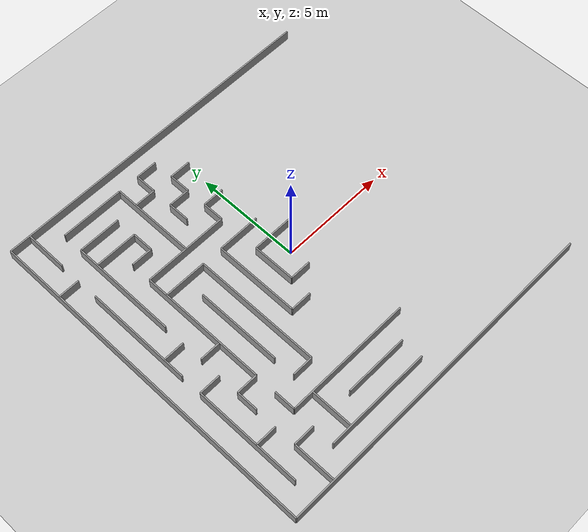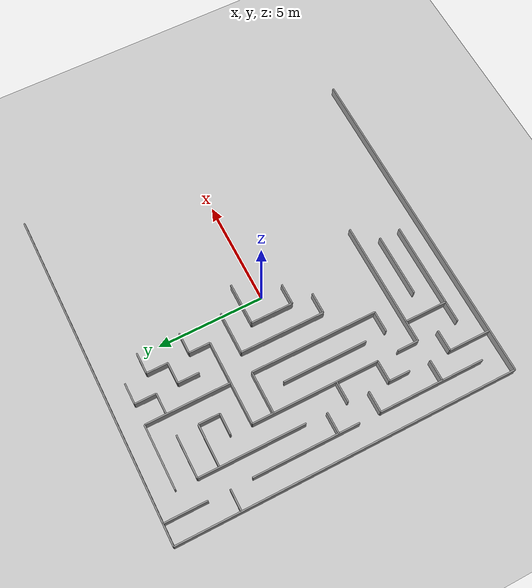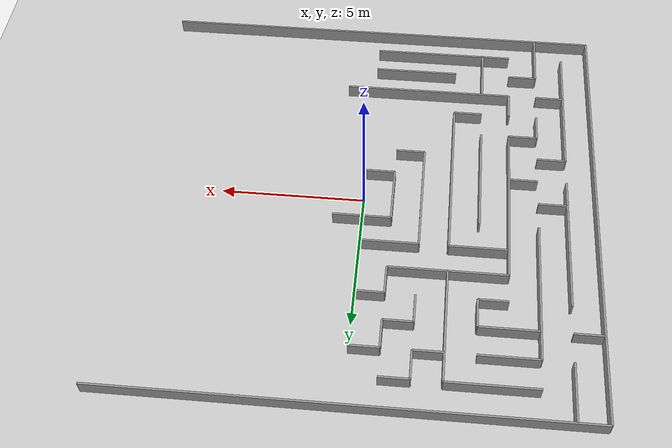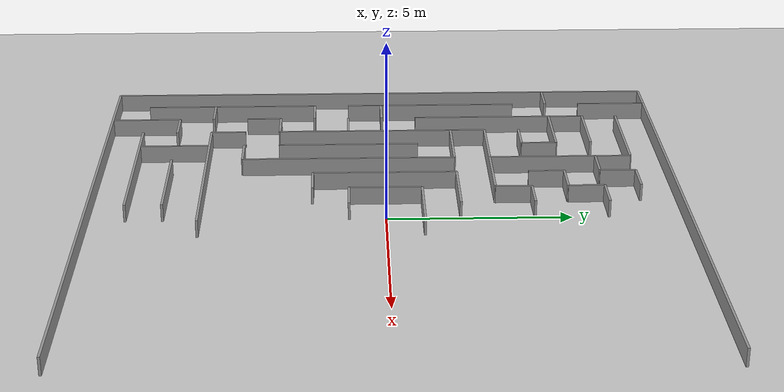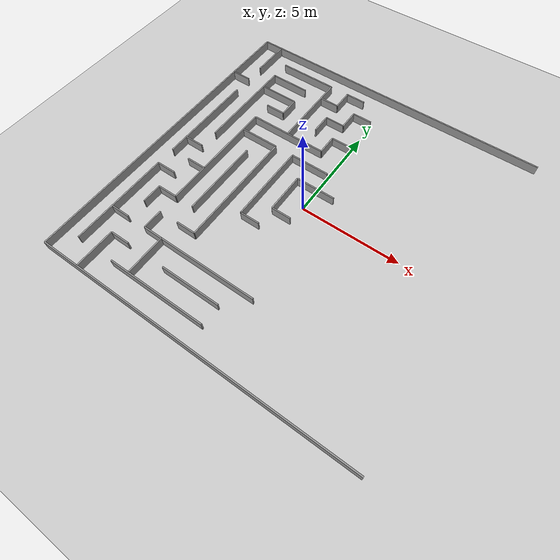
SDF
<sdf version="1.7">
 <world name="maze_world">
  <include><uri>model://sun</uri></include>
  <include><uri>model://ground_plane</uri></include>
  <model name="optimized_wall_0">
   <static>1</static>
   <pose>0.0 -8.0 0.25 0 0 0.0</pose>
   <link name="link">
    <collision name="collision"><geometry><box><size>16.0 0.066 0.5</size></box></geometry></collision>
    <visual name="visual">
     <geometry><box><size>16.0 0.066 0.5</size></box></geometry>
     <material>
      <script><uri>file://media/materials/scripts/gazebo.material</uri><name>Gazebo/Grey</name></script>
     </material>
    </visual>
   </link>
  </model>
  <model name="optimized_wall_1">
   <static>1</static>
   <pose>-2.5 -7.0 0.25 0 0 0.0</pose>
   <link name="link">
    <collision name="collision"><geometry><box><size>5.0 0.066 0.5</size></box></geometry></collision>
    <visual name="visual">
     <geometry><box><size>5.0 0.066 0.5</size></box></geometry>
     <material>
      <script><uri>file://media/materials/scripts/gazebo.material</uri><name>Gazebo/Grey</name></script>
     </material>
    </visual>
   </link>
  </model>
  <model name="optimized_wall_3">
   <static>1</static>
   <pose>-5.5 -6.0 0.25 0 0 0.0</pose>
   <link name="link">
    <collision name="collision"><geometry><box><size>1.0 0.066 0.5</size></box></geometry></collision>
    <visual name="visual">
     <geometry><box><size>1.0 0.066 0.5</size></box></geometry>
     <material>
      <script><uri>file://media/materials/scripts/gazebo.material</uri><name>Gazebo/Grey</name></script>
     </material>
    </visual>
   </link>
  </model>
  <model name="optimized_wall_4">
   <static>1</static>
   <pose>-1.5 -6.0 0.25 0 0 0.0</pose>
   <link name="link">
    <collision name="collision"><geometry><box><size>3.0 0.066 0.5</size></box></geometry></collision>
    <visual name="visual">
     <geometry><box><size>3.0 0.066 0.5</size></box></geometry>
     <material>
      <script><uri>file://media/materials/scripts/gazebo.material</uri><name>Gazebo/Grey</name></script>
     </material>
    </visual>
   </link>
  </model>
  <model name="optimized_wall_6">
   <static>1</static>
   <pose>-6.5 -5.0 0.25 0 0 0.0</pose>
   <link name="link">
    <collision name="collision"><geometry><box><size>1.0 0.066 0.5</size></box></geometry></collision>
    <visual name="visual">
     <geometry><box><size>1.0 0.066 0.5</size></box></geometry>
     <material>
      <script><uri>file://media/materials/scripts/gazebo.material</uri><name>Gazebo/Grey</name></script>
     </material>
    </visual>
   </link>
  </model>
  <model name="optimized_wall_7">
   <static>1</static>
   <pose>-2.0 -5.0 0.25 0 0 0.0</pose>
   <link name="link">
    <collision name="collision"><geometry><box><size>6.0 0.066 0.5</size></box></geometry></collision>
    <visual name="visual">
     <geometry><box><size>6.0 0.066 0.5</size></box></geometry>
     <material>
      <script><uri>file://media/materials/scripts/gazebo.material</uri><name>Gazebo/Grey</name></script>
     </material>
    </visual>
   </link>
  </model>
  <model name="optimized_wall_9">
   <static>1</static>
   <pose>-3.5 -4.0 0.25 0 0 0.0</pose>
   <link name="link">
    <collision name="collision"><geometry><box><size>1.0 0.066 0.5</size></box></geometry></collision>
    <visual name="visual">
     <geometry><box><size>1.0 0.066 0.5</size></box></geometry>
     <material>
      <script><uri>file://media/materials/scripts/gazebo.material</uri><name>Gazebo/Grey</name></script>
     </material>
    </visual>
   </link>
  </model>
  <model name="optimized_wall_11">
   <static>1</static>
   <pose>-5.5 -3.0 0.25 0 0 0.0</pose>
   <link name="link">
    <collision name="collision"><geometry><box><size>1.0 0.066 0.5</size></box></geometry></collision>
    <visual name="visual">
     <geometry><box><size>1.0 0.066 0.5</size></box></geometry>
     <material>
      <script><uri>file://media/materials/scripts/gazebo.material</uri><name>Gazebo/Grey</name></script>
     </material>
    </visual>
   </link>
  </model>
  <model name="optimized_wall_13">
   <static>1</static>
   <pose>-6.5 -2.0 0.25 0 0 0.0</pose>
   <link name="link">
    <collision name="collision"><geometry><box><size>1.0 0.066 0.5</size></box></geometry></collision>
    <visual name="visual">
     <geometry><box><size>1.0 0.066 0.5</size></box></geometry>
     <material>
      <script><uri>file://media/materials/scripts/gazebo.material</uri><name>Gazebo/Grey</name></script>
     </material>
    </visual>
   </link>
  </model>
  <model name="optimized_wall_14">
   <static>1</static>
   <pose>-1.5 -2.0 0.25 0 0 0.0</pose>
   <link name="link">
    <collision name="collision"><geometry><box><size>1.0 0.066 0.5</size></box></geometry></collision>
    <visual name="visual">
     <geometry><box><size>1.0 0.066 0.5</size></box></geometry>
     <material>
      <script><uri>file://media/materials/scripts/gazebo.material</uri><name>Gazebo/Grey</name></script>
     </material>
    </visual>
   </link>
  </model>
  <model name="optimized_wall_17">
   <static>1</static>
   <pose>-5.5 -1.0 0.25 0 0 0.0</pose>
   <link name="link">
    <collision name="collision"><geometry><box><size>1.0 0.066 0.5</size></box></geometry></collision>
    <visual name="visual">
     <geometry><box><size>1.0 0.066 0.5</size></box></geometry>
     <material>
      <script><uri>file://media/materials/scripts/gazebo.material</uri><name>Gazebo/Grey</name></script>
     </material>
    </visual>
   </link>
  </model>
  <model name="optimized_wall_18">
   <static>1</static>
   <pose>-0.5 -1.0 0.25 0 0 0.0</pose>
   <link name="link">
    <collision name="collision"><geometry><box><size>1.0 0.066 0.5</size></box></geometry></collision>
    <visual name="visual">
     <geometry><box><size>1.0 0.066 0.5</size></box></geometry>
     <material>
      <script><uri>file://media/materials/scripts/gazebo.material</uri><name>Gazebo/Grey</name></script>
     </material>
    </visual>
   </link>
  </model>
  <model name="optimized_wall_21">
   <static>1</static>
   <pose>-6.5 0.0 0.25 0 0 0.0</pose>
   <link name="link">
    <collision name="collision"><geometry><box><size>1.0 0.066 0.5</size></box></geometry></collision>
    <visual name="visual">
     <geometry><box><size>1.0 0.066 0.5</size></box></geometry>
     <material>
      <script><uri>file://media/materials/scripts/gazebo.material</uri><name>Gazebo/Grey</name></script>
     </material>
    </visual>
   </link>
  </model>
  <model name="optimized_wall_24">
   <static>1</static>
   <pose>0.0 1.0 0.25 0 0 0.0</pose>
   <link name="link">
    <collision name="collision"><geometry><box><size>2.0 0.066 0.5</size></box></geometry></collision>
    <visual name="visual">
     <geometry><box><size>2.0 0.066 0.5</size></box></geometry>
     <material>
      <script><uri>file://media/materials/scripts/gazebo.material</uri><name>Gazebo/Grey</name></script>
     </material>
    </visual>
   </link>
  </model>
  <model name="optimized_wall_26">
   <static>1</static>
   <pose>-4.0 2.0 0.25 0 0 0.0</pose>
   <link name="link">
    <collision name="collision"><geometry><box><size>2.0 0.066 0.5</size></box></geometry></collision>
    <visual name="visual">
     <geometry><box><size>2.0 0.066 0.5</size></box></geometry>
     <material>
      <script><uri>file://media/materials/scripts/gazebo.material</uri><name>Gazebo/Grey</name></script>
     </material>
    </visual>
   </link>
  </model>
  <model name="optimized_wall_27">
   <static>1</static>
   <pose>-1.0 2.0 0.25 0 0 0.0</pose>
   <link name="link">
    <collision name="collision"><geometry><box><size>2.0 0.066 0.5</size></box></geometry></collision>
    <visual name="visual">
     <geometry><box><size>2.0 0.066 0.5</size></box></geometry>
     <material>
      <script><uri>file://media/materials/scripts/gazebo.material</uri><name>Gazebo/Grey</name></script>
     </material>
    </visual>
   </link>
  </model>
  <model name="optimized_wall_30">
   <static>1</static>
   <pose>-3.0 3.0 0.25 0 0 0.0</pose>
   <link name="link">
    <collision name="collision"><geometry><box><size>4.0 0.066 0.5</size></box></geometry></collision>
    <visual name="visual">
     <geometry><box><size>4.0 0.066 0.5</size></box></geometry>
     <material>
      <script><uri>file://media/materials/scripts/gazebo.material</uri><name>Gazebo/Grey</name></script>
     </material>
    </visual>
   </link>
  </model>
  <model name="optimized_wall_33">
   <static>1</static>
   <pose>-4.5 4.0 0.25 0 0 0.0</pose>
   <link name="link">
    <collision name="collision"><geometry><box><size>1.0 0.066 0.5</size></box></geometry></collision>
    <visual name="visual">
     <geometry><box><size>1.0 0.066 0.5</size></box></geometry>
     <material>
      <script><uri>file://media/materials/scripts/gazebo.material</uri><name>Gazebo/Grey</name></script>
     </material>
    </visual>
   </link>
  </model>
  <model name="optimized_wall_34">
   <static>1</static>
   <pose>-0.5 4.0 0.25 0 0 0.0</pose>
   <link name="link">
    <collision name="collision"><geometry><box><size>1.0 0.066 0.5</size></box></geometry></collision>
    <visual name="visual">
     <geometry><box><size>1.0 0.066 0.5</size></box></geometry>
     <material>
      <script><uri>file://media/materials/scripts/gazebo.material</uri><name>Gazebo/Grey</name></script>
     </material>
    </visual>
   </link>
  </model>
  <model name="optimized_wall_37">
   <static>1</static>
   <pose>-7.5 5.0 0.25 0 0 0.0</pose>
   <link name="link">
    <collision name="collision"><geometry><box><size>1.0 0.066 0.5</size></box></geometry></collision>
    <visual name="visual">
     <geometry><box><size>1.0 0.066 0.5</size></box></geometry>
     <material>
      <script><uri>file://media/materials/scripts/gazebo.material</uri><name>Gazebo/Grey</name></script>
     </material>
    </visual>
   </link>
  </model>
  <model name="optimized_wall_38">
   <static>1</static>
   <pose>-5.0 5.0 0.25 0 0 0.0</pose>
   <link name="link">
    <collision name="collision"><geometry><box><size>2.0 0.066 0.5</size></box></geometry></collision>
    <visual name="visual">
     <geometry><box><size>2.0 0.066 0.5</size></box></geometry>
     <material>
      <script><uri>file://media/materials/scripts/gazebo.material</uri><name>Gazebo/Grey</name></script>
     </material>
    </visual>
   </link>
  </model>
  <model name="optimized_wall_39">
   <static>1</static>
   <pose>-1.5 5.0 0.25 0 0 0.0</pose>
   <link name="link">
    <collision name="collision"><geometry><box><size>1.0 0.066 0.5</size></box></geometry></collision>
    <visual name="visual">
     <geometry><box><size>1.0 0.066 0.5</size></box></geometry>
     <material>
      <script><uri>file://media/materials/scripts/gazebo.material</uri><name>Gazebo/Grey</name></script>
     </material>
    </visual>
   </link>
  </model>
  <model name="optimized_wall_42">
   <static>1</static>
   <pose>-5.0 6.0 0.25 0 0 0.0</pose>
   <link name="link">
    <collision name="collision"><geometry><box><size>2.0 0.066 0.5</size></box></geometry></collision>
    <visual name="visual">
     <geometry><box><size>2.0 0.066 0.5</size></box></geometry>
     <material>
      <script><uri>file://media/materials/scripts/gazebo.material</uri><name>Gazebo/Grey</name></script>
     </material>
    </visual>
   </link>
  </model>
  <model name="optimized_wall_43">
   <static>1</static>
   <pose>-2.5 6.0 0.25 0 0 0.0</pose>
   <link name="link">
    <collision name="collision"><geometry><box><size>1.0 0.066 0.5</size></box></geometry></collision>
    <visual name="visual">
     <geometry><box><size>1.0 0.066 0.5</size></box></geometry>
     <material>
      <script><uri>file://media/materials/scripts/gazebo.material</uri><name>Gazebo/Grey</name></script>
     </material>
    </visual>
   </link>
  </model>
  <model name="optimized_wall_44">
   <static>1</static>
   <pose>-0.5 6.0 0.25 0 0 0.0</pose>
   <link name="link">
    <collision name="collision"><geometry><box><size>1.0 0.066 0.5</size></box></geometry></collision>
    <visual name="visual">
     <geometry><box><size>1.0 0.066 0.5</size></box></geometry>
     <material>
      <script><uri>file://media/materials/scripts/gazebo.material</uri><name>Gazebo/Grey</name></script>
     </material>
    </visual>
   </link>
  </model>
  <model name="optimized_wall_46">
   <static>1</static>
   <pose>-4.5 7.0 0.25 0 0 0.0</pose>
   <link name="link">
    <collision name="collision"><geometry><box><size>3.0 0.066 0.5</size></box></geometry></collision>
    <visual name="visual">
     <geometry><box><size>3.0 0.066 0.5</size></box></geometry>
     <material>
      <script><uri>file://media/materials/scripts/gazebo.material</uri><name>Gazebo/Grey</name></script>
     </material>
    </visual>
   </link>
  </model>
  <model name="optimized_wall_47">
   <static>1</static>
   <pose>-1.5 7.0 0.25 0 0 0.0</pose>
   <link name="link">
    <collision name="collision"><geometry><box><size>1.0 0.066 0.5</size></box></geometry></collision>
    <visual name="visual">
     <geometry><box><size>1.0 0.066 0.5</size></box></geometry>
     <material>
      <script><uri>file://media/materials/scripts/gazebo.material</uri><name>Gazebo/Grey</name></script>
     </material>
    </visual>
   </link>
  </model>
  <model name="optimized_wall_49">
   <static>1</static>
   <pose>0.0 8.0 0.25 0 0 0.0</pose>
   <link name="link">
    <collision name="collision"><geometry><box><size>16.0 0.066 0.5</size></box></geometry></collision>
    <visual name="visual">
     <geometry><box><size>16.0 0.066 0.5</size></box></geometry>
     <material>
      <script><uri>file://media/materials/scripts/gazebo.material</uri><name>Gazebo/Grey</name></script>
     </material>
    </visual>
   </link>
  </model>
  <model name="optimized_wall_50">
   <static>1</static>
   <pose>-8.0 0.0 0.25 0 0 1.570796</pose>
   <link name="link">
    <collision name="collision"><geometry><box><size>16.0 0.066 0.5</size></box></geometry></collision>
    <visual name="visual">
     <geometry><box><size>16.0 0.066 0.5</size></box></geometry>
     <material>
      <script><uri>file://media/materials/scripts/gazebo.material</uri><name>Gazebo/Grey</name></script>
     </material>
    </visual>
   </link>
  </model>
  <model name="optimized_wall_51">
   <static>1</static>
   <pose>-7.0 -4.5 0.25 0 0 1.570796</pose>
   <link name="link">
    <collision name="collision"><geometry><box><size>5.0 0.066 0.5</size></box></geometry></collision>
    <visual name="visual">
     <geometry><box><size>5.0 0.066 0.5</size></box></geometry>
     <material>
      <script><uri>file://media/materials/scripts/gazebo.material</uri><name>Gazebo/Grey</name></script>
     </material>
    </visual>
   </link>
  </model>
  <model name="optimized_wall_52">
   <static>1</static>
   <pose>-7.0 1.5 0.25 0 0 1.570796</pose>
   <link name="link">
    <collision name="collision"><geometry><box><size>5.0 0.066 0.5</size></box></geometry></collision>
    <visual name="visual">
     <geometry><box><size>5.0 0.066 0.5</size></box></geometry>
     <material>
      <script><uri>file://media/materials/scripts/gazebo.material</uri><name>Gazebo/Grey</name></script>
     </material>
    </visual>
   </link>
  </model>
  <model name="optimized_wall_53">
   <static>1</static>
   <pose>-7.0 7.0 0.25 0 0 1.570796</pose>
   <link name="link">
    <collision name="collision"><geometry><box><size>2.0 0.066 0.5</size></box></geometry></collision>
    <visual name="visual">
     <geometry><box><size>2.0 0.066 0.5</size></box></geometry>
     <material>
      <script><uri>file://media/materials/scripts/gazebo.material</uri><name>Gazebo/Grey</name></script>
     </material>
    </visual>
   </link>
  </model>
  <model name="optimized_wall_54">
   <static>1</static>
   <pose>-6.0 -7.0 0.25 0 0 1.570796</pose>
   <link name="link">
    <collision name="collision"><geometry><box><size>2.0 0.066 0.5</size></box></geometry></collision>
    <visual name="visual">
     <geometry><box><size>2.0 0.066 0.5</size></box></geometry>
     <material>
      <script><uri>file://media/materials/scripts/gazebo.material</uri><name>Gazebo/Grey</name></script>
     </material>
    </visual>
   </link>
  </model>
  <model name="optimized_wall_55">
   <static>1</static>
   <pose>-6.0 -3.5 0.25 0 0 1.570796</pose>
   <link name="link">
    <collision name="collision"><geometry><box><size>1.0 0.066 0.5</size></box></geometry></collision>
    <visual name="visual">
     <geometry><box><size>1.0 0.066 0.5</size></box></geometry>
     <material>
      <script><uri>file://media/materials/scripts/gazebo.material</uri><name>Gazebo/Grey</name></script>
     </material>
    </visual>
   </link>
  </model>
  <model name="optimized_wall_56">
   <static>1</static>
   <pose>-6.0 3.5 0.25 0 0 1.570796</pose>
   <link name="link">
    <collision name="collision"><geometry><box><size>5.0 0.066 0.5</size></box></geometry></collision>
    <visual name="visual">
     <geometry><box><size>5.0 0.066 0.5</size></box></geometry>
     <material>
      <script><uri>file://media/materials/scripts/gazebo.material</uri><name>Gazebo/Grey</name></script>
     </material>
    </visual>
   </link>
  </model>
  <model name="optimized_wall_57">
   <static>1</static>
   <pose>-5.0 -4.5 0.25 0 0 1.570796</pose>
   <link name="link">
    <collision name="collision"><geometry><box><size>1.0 0.066 0.5</size></box></geometry></collision>
    <visual name="visual">
     <geometry><box><size>1.0 0.066 0.5</size></box></geometry>
     <material>
      <script><uri>file://media/materials/scripts/gazebo.material</uri><name>Gazebo/Grey</name></script>
     </material>
    </visual>
   </link>
  </model>
  <model name="optimized_wall_58">
   <static>1</static>
   <pose>-5.0 0.0 0.25 0 0 1.570796</pose>
   <link name="link">
    <collision name="collision"><geometry><box><size>6.0 0.066 0.5</size></box></geometry></collision>
    <visual name="visual">
     <geometry><box><size>6.0 0.066 0.5</size></box></geometry>
     <material>
      <script><uri>file://media/materials/scripts/gazebo.material</uri><name>Gazebo/Grey</name></script>
     </material>
    </visual>
   </link>
  </model>
  <model name="optimized_wall_59">
   <static>1</static>
   <pose>-4.0 -6.0 0.25 0 0 1.570796</pose>
   <link name="link">
    <collision name="collision"><geometry><box><size>2.0 0.066 0.5</size></box></geometry></collision>
    <visual name="visual">
     <geometry><box><size>2.0 0.066 0.5</size></box></geometry>
     <material>
      <script><uri>file://media/materials/scripts/gazebo.material</uri><name>Gazebo/Grey</name></script>
     </material>
    </visual>
   </link>
  </model>
  <model name="optimized_wall_60">
   <static>1</static>
   <pose>-4.0 -1.0 0.25 0 0 1.570796</pose>
   <link name="link">
    <collision name="collision"><geometry><box><size>4.0 0.066 0.5</size></box></geometry></collision>
    <visual name="visual">
     <geometry><box><size>4.0 0.066 0.5</size></box></geometry>
     <material>
      <script><uri>file://media/materials/scripts/gazebo.material</uri><name>Gazebo/Grey</name></script>
     </material>
    </visual>
   </link>
  </model>
  <model name="optimized_wall_61">
   <static>1</static>
   <pose>-4.0 4.5 0.25 0 0 1.570796</pose>
   <link name="link">
    <collision name="collision"><geometry><box><size>1.0 0.066 0.5</size></box></geometry></collision>
    <visual name="visual">
     <geometry><box><size>1.0 0.066 0.5</size></box></geometry>
     <material>
      <script><uri>file://media/materials/scripts/gazebo.material</uri><name>Gazebo/Grey</name></script>
     </material>
    </visual>
   </link>
  </model>
  <model name="optimized_wall_62">
   <static>1</static>
   <pose>-3.0 -1.0 0.25 0 0 1.570796</pose>
   <link name="link">
    <collision name="collision"><geometry><box><size>6.0 0.066 0.5</size></box></geometry></collision>
    <visual name="visual">
     <geometry><box><size>6.0 0.066 0.5</size></box></geometry>
     <material>
      <script><uri>file://media/materials/scripts/gazebo.material</uri><name>Gazebo/Grey</name></script>
     </material>
    </visual>
   </link>
  </model>
  <model name="optimized_wall_63">
   <static>1</static>
   <pose>-3.0 5.0 0.25 0 0 1.570796</pose>
   <link name="link">
    <collision name="collision"><geometry><box><size>4.0 0.066 0.5</size></box></geometry></collision>
    <visual name="visual">
     <geometry><box><size>4.0 0.066 0.5</size></box></geometry>
     <material>
      <script><uri>file://media/materials/scripts/gazebo.material</uri><name>Gazebo/Grey</name></script>
     </material>
    </visual>
   </link>
  </model>
  <model name="optimized_wall_64">
   <static>1</static>
   <pose>-2.0 0.0 0.25 0 0 1.570796</pose>
   <link name="link">
    <collision name="collision"><geometry><box><size>4.0 0.066 0.5</size></box></geometry></collision>
    <visual name="visual">
     <geometry><box><size>4.0 0.066 0.5</size></box></geometry>
     <material>
      <script><uri>file://media/materials/scripts/gazebo.material</uri><name>Gazebo/Grey</name></script>
     </material>
    </visual>
   </link>
  </model>
  <model name="optimized_wall_65">
   <static>1</static>
   <pose>-2.0 4.5 0.25 0 0 1.570796</pose>
   <link name="link">
    <collision name="collision"><geometry><box><size>1.0 0.066 0.5</size></box></geometry></collision>
    <visual name="visual">
     <geometry><box><size>1.0 0.066 0.5</size></box></geometry>
     <material>
      <script><uri>file://media/materials/scripts/gazebo.material</uri><name>Gazebo/Grey</name></script>
     </material>
    </visual>
   </link>
  </model>
  <model name="optimized_wall_66">
   <static>1</static>
   <pose>-2.0 6.5 0.25 0 0 1.570796</pose>
   <link name="link">
    <collision name="collision"><geometry><box><size>1.0 0.066 0.5</size></box></geometry></collision>
    <visual name="visual">
     <geometry><box><size>1.0 0.066 0.5</size></box></geometry>
     <material>
      <script><uri>file://media/materials/scripts/gazebo.material</uri><name>Gazebo/Grey</name></script>
     </material>
    </visual>
   </link>
  </model>
  <model name="optimized_wall_67">
   <static>1</static>
   <pose>-1.0 0.0 0.25 0 0 1.570796</pose>
   <link name="link">
    <collision name="collision"><geometry><box><size>2.0 0.066 0.5</size></box></geometry></collision>
    <visual name="visual">
     <geometry><box><size>2.0 0.066 0.5</size></box></geometry>
     <material>
      <script><uri>file://media/materials/scripts/gazebo.material</uri><name>Gazebo/Grey</name></script>
     </material>
    </visual>
   </link>
  </model>
  <model name="optimized_wall_68">
   <static>1</static>
   <pose>-1.0 3.5 0.25 0 0 1.570796</pose>
   <link name="link">
    <collision name="collision"><geometry><box><size>1.0 0.066 0.5</size></box></geometry></collision>
    <visual name="visual">
     <geometry><box><size>1.0 0.066 0.5</size></box></geometry>
     <material>
      <script><uri>file://media/materials/scripts/gazebo.material</uri><name>Gazebo/Grey</name></script>
     </material>
    </visual>
   </link>
  </model>
  <model name="optimized_wall_69">
   <static>1</static>
   <pose>-1.0 5.5 0.25 0 0 1.570796</pose>
   <link name="link">
    <collision name="collision"><geometry><box><size>1.0 0.066 0.5</size></box></geometry></collision>
    <visual name="visual">
     <geometry><box><size>1.0 0.066 0.5</size></box></geometry>
     <material>
      <script><uri>file://media/materials/scripts/gazebo.material</uri><name>Gazebo/Grey</name></script>
     </material>
    </visual>
   </link>
  </model>
 </world>
</sdf>
